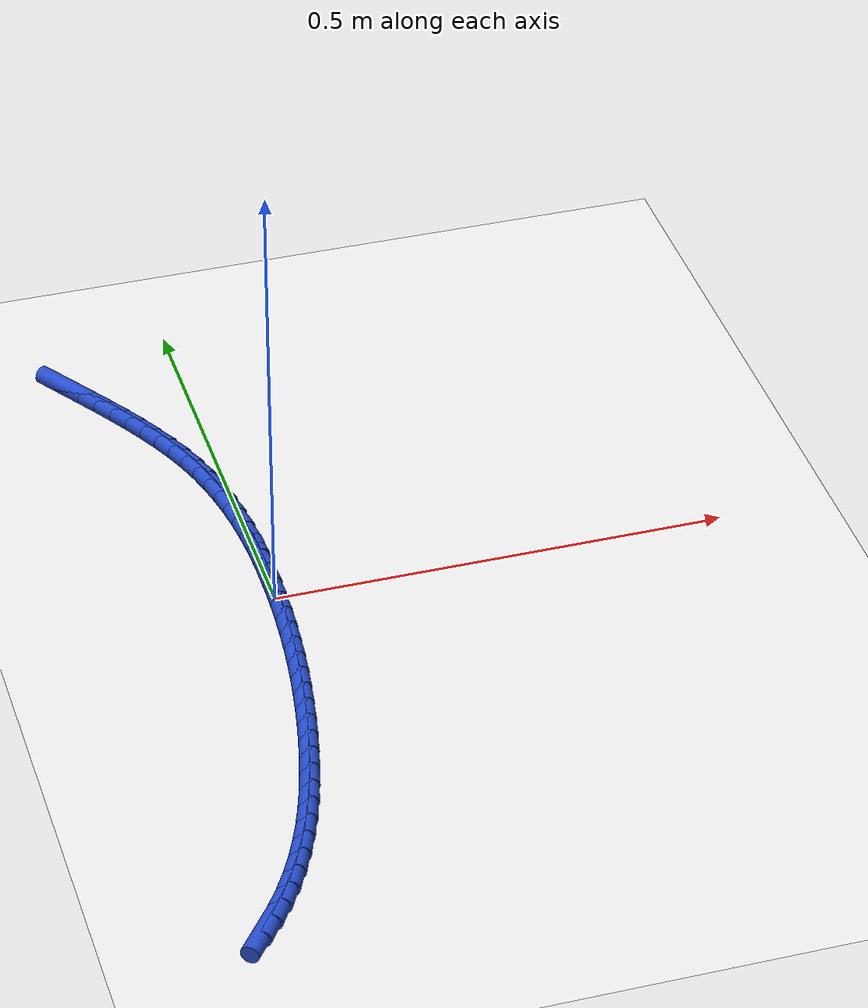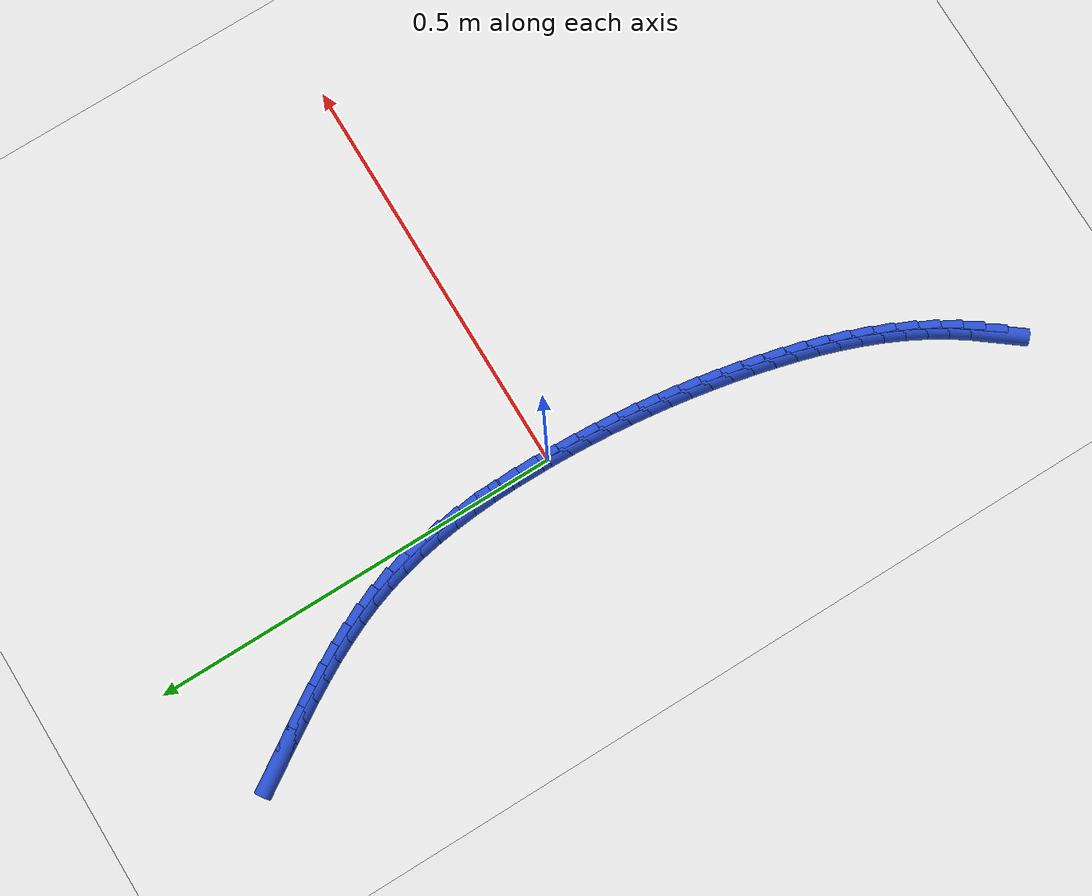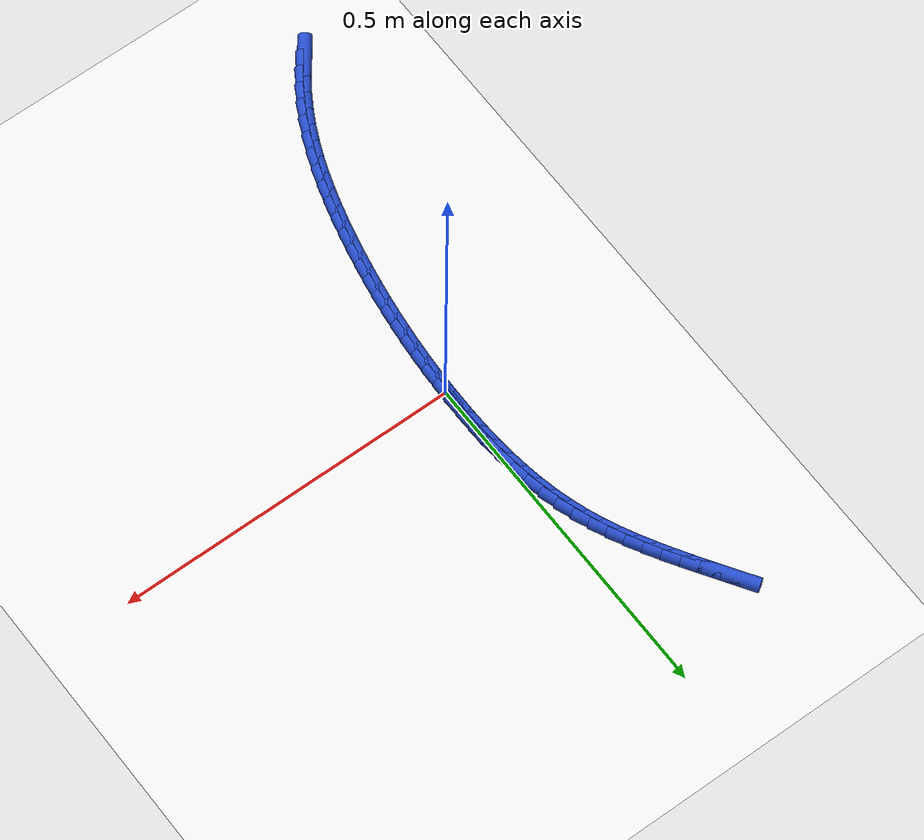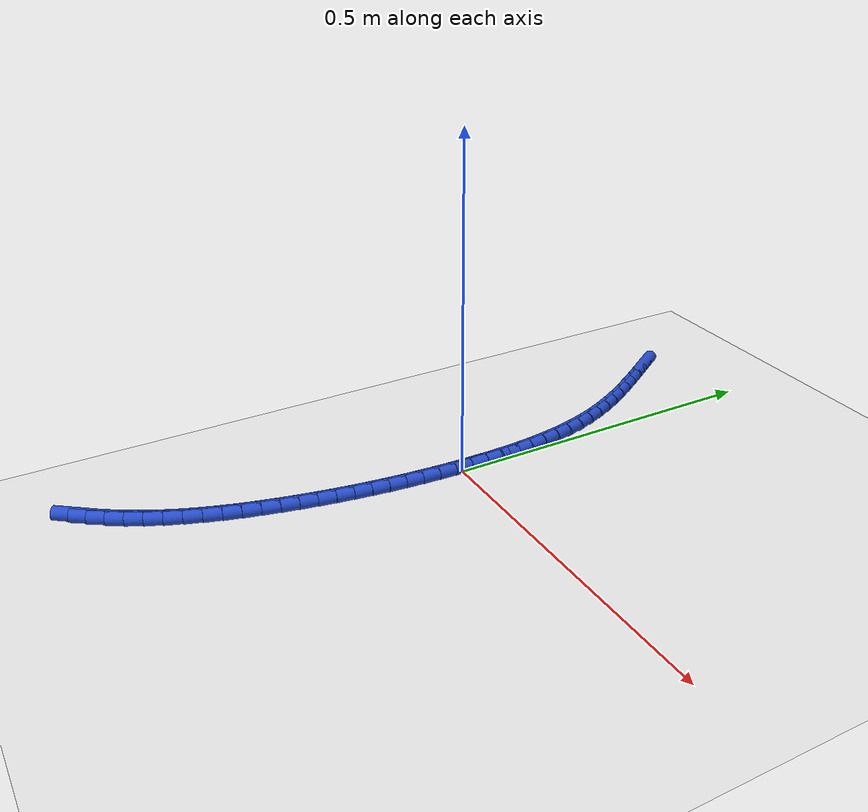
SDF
<sdf version="1.6">
 <world name="default">
  <model name="ground_plane">
   <static>1</static>
   <link name="link">
    <collision name="collision">
     <geometry><plane><normal>0 0 1</normal><size>100 100</size></plane></geometry>
     <surface><friction><ode><mu>100</mu><mu2>50</mu2></ode></friction></surface>
    </collision>
    <visual name="visual">
     <cast_shadows>0</cast_shadows>
     <geometry><plane><normal>0 0 1</normal><size>100 100</size></plane></geometry>
     <material>
      <script><uri>file://media/materials/scripts/gazebo.material</uri><name>Gazebo/WhiteGlow</name></script>
     </material>
    </visual>
   </link>
  </model>
  <model name="line">
   <link name="link_0">
    <pose>1.0842021724855044e-17 -2.7755575615628914e-17 0.01 0 1.57 1.5546364044875272</pose>
    <collision name="collision">
     <geometry><cylinder><radius>0.01</radius><length>0.08</length></cylinder></geometry>
    </collision>
    <visual name="visual">
     <material>
      <script><name>Gazebo/Blue</name><uri>file://media/materials/scripts/gazebo.material</uri></script>
     </material>
     <geometry><cylinder><radius>0.01</radius><length>0.08</length></cylinder></geometry>
    </visual>
   </link>
   <link name="link_1">
    <pose>0.0004118270198825984 0.025482249408916132 0.01 0 1.57 -1.564186398989211</pose>
    <collision name="collision">
     <geometry><cylinder><radius>0.01</radius><length>0.08</length></cylinder></geometry>
    </collision>
    <visual name="visual">
     <material>
      <script><name>Gazebo/Blue</name><uri>file://media/materials/scripts/gazebo.material</uri></script>
     </material>
     <geometry><cylinder><radius>0.01</radius><length>0.08</length></cylinder></geometry>
    </visual>
   </link>
   <link name="link_2">
    <pose>0.0002429209052618664 0.05103527505130427 0.01 0 1.57 -1.537986692656326</pose>
    <collision name="collision">
     <geometry><cylinder><radius>0.01</radius><length>0.08</length></cylinder></geometry>
    </collision>
    <visual name="visual">
     <material>
      <script><name>Gazebo/Blue</name><uri>file://media/materials/scripts/gazebo.material</uri></script>
     </material>
     <geometry><cylinder><radius>0.01</radius><length>0.08</length></cylinder></geometry>
    </visual>
   </link>
   <link name="link_3">
    <pose>-0.0005957502410896391 0.07658783640723593 0.01 0 1.57 -1.5081853976924107</pose>
    <collision name="collision">
     <geometry><cylinder><radius>0.01</radius><length>0.08</length></cylinder></geometry>
    </collision>
    <visual name="visual">
     <material>
      <script><name>Gazebo/Blue</name><uri>file://media/materials/scripts/gazebo.material</uri></script>
     </material>
     <geometry><cylinder><radius>0.01</radius><length>0.08</length></cylinder></geometry>
    </visual>
   </link>
   <link name="link_4">
    <pose>-0.002193218316399366 0.10206869295678264 0.01 0 1.57 -1.4745868386641132</pose>
    <collision name="collision">
     <geometry><cylinder><radius>0.01</radius><length>0.08</length></cylinder></geometry>
    </collision>
    <visual name="visual">
     <material>
      <script><name>Gazebo/Blue</name><uri>file://media/materials/scripts/gazebo.material</uri></script>
     </material>
     <geometry><cylinder><radius>0.01</radius><length>0.08</length></cylinder></geometry>
    </visual>
   </link>
   <link name="link_5">
    <pose>-0.0046385152178947675 0.12740660418001598 0.01 0 1.57 -1.4369807490528712</pose>
    <collision name="collision">
     <geometry><cylinder><radius>0.01</radius><length>0.08</length></cylinder></geometry>
    </collision>
    <visual name="visual">
     <material>
      <script><name>Gazebo/Blue</name><uri>file://media/materials/scripts/gazebo.material</uri></script>
     </material>
     <geometry><cylinder><radius>0.01</radius><length>0.08</length></cylinder></geometry>
    </visual>
   </link>
   <link name="link_6">
    <pose>-0.008020672842803292 0.15253032955700746 0.01 0 1.57 -1.3951551702502742</pose>
    <collision name="collision">
     <geometry><cylinder><radius>0.01</radius><length>0.08</length></cylinder></geometry>
    </collision>
    <visual name="visual">
     <material>
      <script><name>Gazebo/Blue</name><uri>file://media/materials/scripts/gazebo.material</uri></script>
     </material>
     <geometry><cylinder><radius>0.01</radius><length>0.08</length></cylinder></geometry>
    </visual>
   </link>
   <link name="link_7">
    <pose>-0.01242872308835239 0.1773686285678287 0.01 0 1.57 -1.3489140348666269</pose>
    <collision name="collision">
     <geometry><cylinder><radius>0.01</radius><length>0.08</length></cylinder></geometry>
    </collision>
    <visual name="visual">
     <material>
      <script><name>Gazebo/Blue</name><uri>file://media/materials/scripts/gazebo.material</uri></script>
     </material>
     <geometry><cylinder><radius>0.01</radius><length>0.08</length></cylinder></geometry>
    </visual>
   </link>
   <link name="link_8">
    <pose>-0.017951697851769515 0.20185026069255116 0.01 0 1.57 -1.298100368414203</pose>
    <collision name="collision">
     <geometry><cylinder><radius>0.01</radius><length>0.08</length></cylinder></geometry>
    </collision>
    <visual name="visual">
     <material>
      <script><name>Gazebo/Blue</name><uri>file://media/materials/scripts/gazebo.material</uri></script>
     </material>
     <geometry><cylinder><radius>0.01</radius><length>0.08</length></cylinder></geometry>
    </visual>
   </link>
   <link name="link_9">
    <pose>-0.024678629030282114 0.2259039854112465 0.01 0 1.57 -1.2427754918187959</pose>
    <collision name="collision">
     <geometry><cylinder><radius>0.01</radius><length>0.08</length></cylinder></geometry>
    </collision>
    <visual name="visual">
     <material>
      <script><name>Gazebo/Blue</name><uri>file://media/materials/scripts/gazebo.material</uri></script>
     </material>
     <geometry><cylinder><radius>0.01</radius><length>0.08</length></cylinder></geometry>
    </visual>
   </link>
   <link name="link_10">
    <pose>-0.03269524403912652 0.24946044079216761 0.01 0 1.57 -1.1878391623554423</pose>
    <collision name="collision">
     <geometry><cylinder><radius>0.01</radius><length>0.08</length></cylinder></geometry>
    </collision>
    <visual name="visual">
     <material>
      <script><name>Gazebo/Blue</name><uri>file://media/materials/scripts/gazebo.material</uri></script>
     </material>
     <geometry><cylinder><radius>0.01</radius><length>0.08</length></cylinder></geometry>
    </visual>
   </link>
   <link name="link_11">
    <pose>-0.04198094604288235 0.27251070992375953 0.01 0 1.57 -1.1393507900521251</pose>
    <collision name="collision">
     <geometry><cylinder><radius>0.01</radius><length>0.08</length></cylinder></geometry>
    </collision>
    <visual name="visual">
     <material>
      <script><name>Gazebo/Blue</name><uri>file://media/materials/scripts/gazebo.material</uri></script>
     </material>
     <geometry><cylinder><radius>0.01</radius><length>0.08</length></cylinder></geometry>
    </visual>
   </link>
   <link name="link_12">
    <pose>-0.05238861409729365 0.2951178044739416 0.01 0 1.57 -1.0978517748861456</pose>
    <collision name="collision">
     <geometry><cylinder><radius>0.01</radius><length>0.08</length></cylinder></geometry>
    </collision>
    <visual name="visual">
     <material>
      <script><name>Gazebo/Blue</name><uri>file://media/materials/scripts/gazebo.material</uri></script>
     </material>
     <geometry><cylinder><radius>0.01</radius><length>0.08</length></cylinder></geometry>
    </visual>
   </link>
   <link name="link_13">
    <pose>-0.06376374444975706 0.31734893321521485 0.01 0 1.57 -1.0633843891883572</pose>
    <collision name="collision">
     <geometry><cylinder><radius>0.01</radius><length>0.08</length></cylinder></geometry>
    </collision>
    <visual name="visual">
     <material>
      <script><name>Gazebo/Blue</name><uri>file://media/materials/scripts/gazebo.material</uri></script>
     </material>
     <geometry><cylinder><radius>0.01</radius><length>0.08</length></cylinder></geometry>
    </visual>
   </link>
   <link name="link_14">
    <pose>-0.07595183334766925 0.3392713049200809 0.01 0 1.57 -1.0358873955832966</pose>
    <collision name="collision">
     <geometry><cylinder><radius>0.01</radius><length>0.08</length></cylinder></geometry>
    </collision>
    <visual name="visual">
     <material>
      <script><name>Gazebo/Blue</name><uri>file://media/materials/scripts/gazebo.material</uri></script>
     </material>
     <geometry><cylinder><radius>0.01</radius><length>0.08</length></cylinder></geometry>
    </visual>
   </link>
   <link name="link_15">
    <pose>-0.08879837703842691 0.360952128361041 0.01 0 1.57 -1.0152474569510226</pose>
    <collision name="collision">
     <geometry><cylinder><radius>0.01</radius><length>0.08</length></cylinder></geometry>
    </collision>
    <visual name="visual">
     <material>
      <script><name>Gazebo/Blue</name><uri>file://media/materials/scripts/gazebo.material</uri></script>
     </material>
     <geometry><cylinder><radius>0.01</radius><length>0.08</length></cylinder></geometry>
    </visual>
   </link>
   <link name="link_16">
    <pose>-0.10214887176942665 0.3824586123105963 0.01 0 1.57 -1.001338742637416</pose>
    <collision name="collision">
     <geometry><cylinder><radius>0.01</radius><length>0.08</length></cylinder></geometry>
    </collision>
    <visual name="visual">
     <material>
      <script><name>Gazebo/Blue</name><uri>file://media/materials/scripts/gazebo.material</uri></script>
     </material>
     <geometry><cylinder><radius>0.01</radius><length>0.08</length></cylinder></geometry>
    </visual>
   </link>
   <link name="link_17">
    <pose>-0.11584881378806516 0.4038579655412483 0.01 0 1.57 -0.9940507604168353</pose>
    <collision name="collision">
     <geometry><cylinder><radius>0.01</radius><length>0.08</length></cylinder></geometry>
    </collision>
    <visual name="visual">
     <material>
      <script><name>Gazebo/Blue</name><uri>file://media/materials/scripts/gazebo.material</uri></script>
     </material>
     <geometry><cylinder><radius>0.01</radius><length>0.08</length></cylinder></geometry>
    </visual>
   </link>
   <link name="link_18">
    <pose>-0.1297436993417391 0.4252173968254984 0.01 0 1.57 -0.993305687983996</pose>
    <collision name="collision">
     <geometry><cylinder><radius>0.01</radius><length>0.08</length></cylinder></geometry>
    </collision>
    <visual name="visual">
     <material>
      <script><name>Gazebo/Blue</name><uri>file://media/materials/scripts/gazebo.material</uri></script>
     </material>
     <geometry><cylinder><radius>0.01</radius><length>0.08</length></cylinder></geometry>
    </visual>
   </link>
   <link name="link_239">
    <pose>-0.14189001488003342 -0.5020790029300176 0.01 0 1.57 0.9149320230109413</pose>
    <collision name="collision">
     <geometry><cylinder><radius>0.01</radius><length>0.08</length></cylinder></geometry>
    </collision>
    <visual name="visual">
     <material>
      <script><name>Gazebo/Blue</name><uri>file://media/materials/scripts/gazebo.material</uri></script>
     </material>
     <geometry><cylinder><radius>0.01</radius><length>0.08</length></cylinder></geometry>
    </visual>
   </link>
   <link name="link_240">
    <pose>-0.12676216386586042 -0.4824196592570982 0.01 0 1.57 0.9704437060292758</pose>
    <collision name="collision">
     <geometry><cylinder><radius>0.01</radius><length>0.08</length></cylinder></geometry>
    </collision>
    <visual name="visual">
     <material>
      <script><name>Gazebo/Blue</name><uri>file://media/materials/scripts/gazebo.material</uri></script>
     </material>
     <geometry><cylinder><radius>0.01</radius><length>0.08</length></cylinder></geometry>
    </visual>
   </link>
   <link name="link_241">
    <pose>-0.11274525599912905 -0.4619466967544225 0.01 0 1.57 1.028873031120104</pose>
    <collision name="collision">
     <geometry><cylinder><radius>0.01</radius><length>0.08</length></cylinder></geometry>
    </collision>
    <visual name="visual">
     <material>
      <script><name>Gazebo/Blue</name><uri>file://media/materials/scripts/gazebo.material</uri></script>
     </material>
     <geometry><cylinder><radius>0.01</radius><length>0.08</length></cylinder></geometry>
    </visual>
   </link>
   <link name="link_242">
    <pose>-0.099906535612602 -0.4406215839847285 0.01 0 1.57 1.0834088051110924</pose>
    <collision name="collision">
     <geometry><cylinder><radius>0.01</radius><length>0.08</length></cylinder></geometry>
    </collision>
    <visual name="visual">
     <material>
      <script><name>Gazebo/Blue</name><uri>file://media/materials/scripts/gazebo.material</uri></script>
     </material>
     <geometry><cylinder><radius>0.01</radius><length>0.08</length></cylinder></geometry>
    </visual>
   </link>
   <link name="link_243">
    <pose>-0.08819216855153257 -0.4185205505541982 0.01 0 1.57 1.1329922601473479</pose>
    <collision name="collision">
     <geometry><cylinder><radius>0.01</radius><length>0.08</length></cylinder></geometry>
    </collision>
    <visual name="visual">
     <material>
      <script><name>Gazebo/Blue</name><uri>file://media/materials/scripts/gazebo.material</uri></script>
     </material>
     <geometry><cylinder><radius>0.01</radius><length>0.08</length></cylinder></geometry>
    </visual>
   </link>
   <link name="link_244">
    <pose>-0.07752810393163632 -0.39573898796163814 0.01 0 1.57 1.1777682069108966</pose>
    <collision name="collision">
     <geometry><cylinder><radius>0.01</radius><length>0.08</length></cylinder></geometry>
    </collision>
    <visual name="visual">
     <material>
      <script><name>Gazebo/Blue</name><uri>file://media/materials/scripts/gazebo.material</uri></script>
     </material>
     <geometry><cylinder><radius>0.01</radius><length>0.08</length></cylinder></geometry>
    </visual>
   </link>
   <link name="link_245">
    <pose>-0.06784029086862843 -0.37237228770585423 0.01 0 1.57 1.217938987296376</pose>
    <collision name="collision">
     <geometry><cylinder><radius>0.01</radius><length>0.08</length></cylinder></geometry>
    </collision>
    <visual name="visual">
     <material>
      <script><name>Gazebo/Blue</name><uri>file://media/materials/scripts/gazebo.material</uri></script>
     </material>
     <geometry><cylinder><radius>0.01</radius><length>0.08</length></cylinder></geometry>
    </visual>
   </link>
   <link name="link_246">
    <pose>-0.05905467847822496 -0.3485158412856542 0.01 0 1.57 1.2537343009037394</pose>
    <collision name="collision">
     <geometry><cylinder><radius>0.01</radius><length>0.08</length></cylinder></geometry>
    </collision>
    <visual name="visual">
     <material>
      <script><name>Gazebo/Blue</name><uri>file://media/materials/scripts/gazebo.material</uri></script>
     </material>
     <geometry><cylinder><radius>0.01</radius><length>0.08</length></cylinder></geometry>
    </visual>
   </link>
   <link name="link_247">
    <pose>-0.05109721587614112 -0.3242650401998444 0.01 0 1.57 1.2853881631521662</pose>
    <collision name="collision">
     <geometry><cylinder><radius>0.01</radius><length>0.08</length></cylinder></geometry>
    </collision>
    <visual name="visual">
     <material>
      <script><name>Gazebo/Blue</name><uri>file://media/materials/scripts/gazebo.material</uri></script>
     </material>
     <geometry><cylinder><radius>0.01</radius><length>0.08</length></cylinder></geometry>
    </visual>
   </link>
   <link name="link_248">
    <pose>-0.043893852178092406 -0.2997152759472311 0.01 0 1.57 1.3131220296531223</pose>
    <collision name="collision">
     <geometry><cylinder><radius>0.01</radius><length>0.08</length></cylinder></geometry>
    </collision>
    <visual name="visual">
     <material>
      <script><name>Gazebo/Blue</name><uri>file://media/materials/scripts/gazebo.material</uri></script>
     </material>
     <geometry><cylinder><radius>0.01</radius><length>0.08</length></cylinder></geometry>
    </visual>
   </link>
   <link name="link_249">
    <pose>-0.03737053649979433 -0.27496194002662094 0.01 0 1.57 1.3371327050441417</pose>
    <collision name="collision">
     <geometry><cylinder><radius>0.01</radius><length>0.08</length></cylinder></geometry>
    </collision>
    <visual name="visual">
     <material>
      <script><name>Gazebo/Blue</name><uri>file://media/materials/scripts/gazebo.material</uri></script>
     </material>
     <geometry><cylinder><radius>0.01</radius><length>0.08</length></cylinder></geometry>
    </visual>
   </link>
   <link name="link_250">
    <pose>-0.0314532179569624 -0.2501004239368205 0.01 0 1.57 1.3576973468922389</pose>
    <collision name="collision">
     <geometry><cylinder><radius>0.01</radius><length>0.08</length></cylinder></geometry>
    </collision>
    <visual name="visual">
     <material>
      <script><name>Gazebo/Blue</name><uri>file://media/materials/scripts/gazebo.material</uri></script>
     </material>
     <geometry><cylinder><radius>0.01</radius><length>0.08</length></cylinder></geometry>
    </visual>
   </link>
   <link name="link_251">
    <pose>-0.026070064697041526 -0.2252226868576404 0.01 0 1.57 1.3768598254573632</pose>
    <collision name="collision">
     <geometry><cylinder><radius>0.01</radius><length>0.08</length></cylinder></geometry>
    </collision>
    <visual name="visual">
     <material>
      <script><name>Gazebo/Blue</name><uri>file://media/materials/scripts/gazebo.material</uri></script>
     </material>
     <geometry><cylinder><radius>0.01</radius><length>0.08</length></cylinder></geometry>
    </visual>
   </link>
   <link name="link_252">
    <pose>-0.021187273893673177 -0.20036186602989753 0.01 0 1.57 1.3962341476337505</pose>
    <collision name="collision">
     <geometry><cylinder><radius>0.01</radius><length>0.08</length></cylinder></geometry>
    </collision>
    <visual name="visual">
     <material>
      <script><name>Gazebo/Blue</name><uri>file://media/materials/scripts/gazebo.material</uri></script>
     </material>
     <geometry><cylinder><radius>0.01</radius><length>0.08</length></cylinder></geometry>
    </visual>
   </link>
   <link name="link_253">
    <pose>-0.016803000327241288 -0.1755016678101061 0.01 0 1.57 1.4158186663257375</pose>
    <collision name="collision">
     <geometry><cylinder><radius>0.01</radius><length>0.08</length></cylinder></geometry>
    </collision>
    <visual name="visual">
     <material>
      <script><name>Gazebo/Blue</name><uri>file://media/materials/scripts/gazebo.material</uri></script>
     </material>
     <geometry><cylinder><radius>0.01</radius><length>0.08</length></cylinder></geometry>
    </visual>
   </link>
   <link name="link_254">
    <pose>-0.012916391997788145 -0.1506242622780965 0.01 0 1.57 1.4355585156269828</pose>
    <collision name="collision">
     <geometry><cylinder><radius>0.01</radius><length>0.08</length></cylinder></geometry>
    </collision>
    <visual name="visual">
     <material>
      <script><name>Gazebo/Blue</name><uri>file://media/materials/scripts/gazebo.material</uri></script>
     </material>
     <geometry><cylinder><radius>0.01</radius><length>0.08</length></cylinder></geometry>
    </visual>
   </link>
   <link name="link_255">
    <pose>-0.009526596905356198 -0.12571181951369992 0.01 0 1.57 1.4553971291926533</pose>
    <collision name="collision">
     <geometry><cylinder><radius>0.01</radius><length>0.08</length></cylinder></geometry>
    </collision>
    <visual name="visual">
     <material>
      <script><name>Gazebo/Blue</name><uri>file://media/materials/scripts/gazebo.material</uri></script>
     </material>
     <geometry><cylinder><radius>0.01</radius><length>0.08</length></cylinder></geometry>
    </visual>
   </link>
   <link name="link_256">
    <pose>-0.006632763049987895 -0.10074650959674737 0.01 0 1.57 1.4752769059477955</pose>
    <collision name="collision">
     <geometry><cylinder><radius>0.01</radius><length>0.08</length></cylinder></geometry>
    </collision>
    <visual name="visual">
     <material>
      <script><name>Gazebo/Blue</name><uri>file://media/materials/scripts/gazebo.material</uri></script>
     </material>
     <geometry><cylinder><radius>0.01</radius><length>0.08</length></cylinder></geometry>
    </visual>
   </link>
   <link name="link_257">
    <pose>-0.004234038431725677 -0.07571050260707005 0.01 0 1.57 1.495139905126037</pose>
    <collision name="collision">
     <geometry><cylinder><radius>0.01</radius><length>0.08</length></cylinder></geometry>
    </collision>
    <visual name="visual">
     <material>
      <script><name>Gazebo/Blue</name><uri>file://media/materials/scripts/gazebo.material</uri></script>
     </material>
     <geometry><cylinder><radius>0.01</radius><length>0.08</length></cylinder></geometry>
    </visual>
   </link>
   <link name="link_258">
    <pose>-0.0023295710506119915 -0.05058596862449894 0.01 0 1.57 1.5149285506163817</pose>
    <collision name="collision">
     <geometry><cylinder><radius>0.01</radius><length>0.08</length></cylinder></geometry>
    </collision>
    <visual name="visual">
     <material>
      <script><name>Gazebo/Blue</name><uri>file://media/materials/scripts/gazebo.material</uri></script>
     </material>
     <geometry><cylinder><radius>0.01</radius><length>0.08</length></cylinder></geometry>
    </visual>
   </link>
   <link name="link_259">
    <pose>-0.0009185089066892798 -0.025355077728865232 0.01 0 1.57 1.534586324099652</pose>
    <collision name="collision">
     <geometry><cylinder><radius>0.01</radius><length>0.08</length></cylinder></geometry>
    </collision>
    <visual name="visual">
     <material>
      <script><name>Gazebo/Blue</name><uri>file://media/materials/scripts/gazebo.material</uri></script>
     </material>
     <geometry><cylinder><radius>0.01</radius><length>0.08</length></cylinder></geometry>
    </visual>
   </link>
   <link name="link_260">
    <pose>7.15573433840433e-18 -3.469446951953614e-17 0.01 0 1.57 1.5540584270625892</pose>
    <collision name="collision">
     <geometry><cylinder><radius>0.01</radius><length>0.08</length></cylinder></geometry>
    </collision>
    <visual name="visual">
     <material>
      <script><name>Gazebo/Blue</name><uri>file://media/materials/scripts/gazebo.material</uri></script>
     </material>
     <geometry><cylinder><radius>0.01</radius><length>0.08</length></cylinder></geometry>
    </visual>
   </link>
   <link name="link_261">
    <pose>0.0004268076694134296 0.025497094482265625 0.01 0 1.57 -1.5683002601548623</pose>
    <collision name="collision">
     <geometry><cylinder><radius>0.01</radius><length>0.08</length></cylinder></geometry>
    </collision>
    <visual name="visual">
     <material>
      <script><name>Gazebo/Blue</name><uri>file://media/materials/scripts/gazebo.material</uri></script>
     </material>
     <geometry><cylinder><radius>0.01</radius><length>0.08</length></cylinder></geometry>
    </visual>
   </link>
   <link name="link_262">
    <pose>0.00036276610150853946 0.051154035638100566 0.01 0 1.57 1.5637048037932328</pose>
    <collision name="collision">
     <geometry><cylinder><radius>0.01</radius><length>0.08</length></cylinder></geometry>
    </collision>
    <visual name="visual">
     <material>
      <script><name>Gazebo/Blue</name><uri>file://media/materials/scripts/gazebo.material</uri></script>
     </material>
     <geometry><cylinder><radius>0.01</radius><length>0.08</length></cylinder></geometry>
    </visual>
   </link>
  </model>
 </world>
</sdf>
